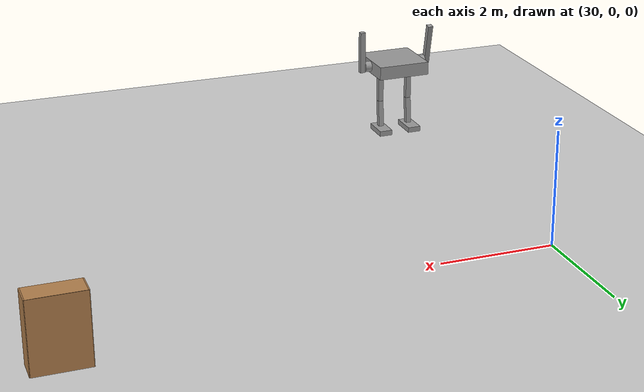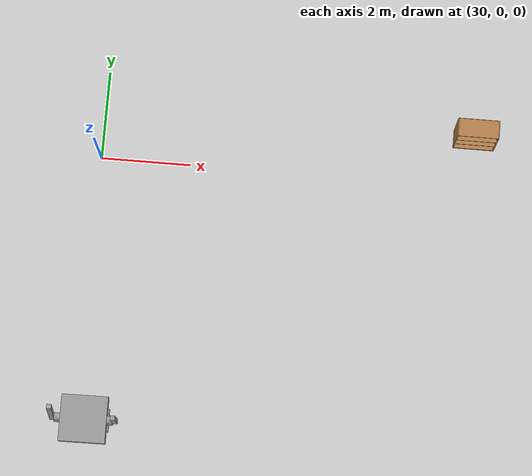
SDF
<sdf version="1.6">
 <world name="default">
  <model name="ground_plane">
   <static>1</static>
   <link name="link">
    <collision name="collision">
     <geometry><plane><normal>0 0 1</normal><size>100 100</size></plane></geometry>
     <surface><friction><ode><mu>100</mu><mu2>50</mu2></ode></friction></surface>
    </collision>
    <visual name="visual">
     <cast_shadows>0</cast_shadows>
     <geometry><plane><normal>0 0 1</normal><size>100 100</size></plane></geometry>
     <material>
      <script><uri>file://media/materials/scripts/gazebo.material</uri><name>Gazebo/Grey</name></script>
     </material>
    </visual>
   </link>
  </model>
  <model name="bookshelf_clone">
   <static>1</static>
   <link name="link">
    <inertial><mass>1</mass></inertial>
    <collision name="back">
     <pose>0 0.005 0.6 0 -0 0</pose>
     <geometry><box><size>0.9 0.01 1.2</size></box></geometry>
    </collision>
    <visual name="visual1">
     <pose>0 0.005 0.6 0 -0 0</pose>
     <geometry><box><size>0.9 0.01 1.2</size></box></geometry>
     <material>
      <script><uri>file://media/materials/scripts/gazebo.material</uri><name>Gazebo/Wood</name></script>
     </material>
    </visual>
    <collision name="left_side">
     <pose>0.45 -0.195 0.6 0 -0 0</pose>
     <geometry><box><size>0.02 0.4 1.2</size></box></geometry>
    </collision>
    <visual name="visual2">
     <pose>0.45 -0.195 0.6 0 -0 0</pose>
     <geometry><box><size>0.02 0.4 1.2</size></box></geometry>
     <material>
      <script><uri>file://media/materials/scripts/gazebo.material</uri><name>Gazebo/Wood</name></script>
     </material>
    </visual>
    <collision name="right_side">
     <pose>-0.45 -0.195 0.6 0 -0 0</pose>
     <geometry><box><size>0.02 0.4 1.2</size></box></geometry>
    </collision>
    <visual name="visual3">
     <pose>-0.45 -0.195 0.6 0 -0 0</pose>
     <geometry><box><size>0.02 0.4 1.2</size></box></geometry>
     <material>
      <script><uri>file://media/materials/scripts/gazebo.material</uri><name>Gazebo/Wood</name></script>
     </material>
    </visual>
    <collision name="bottom">
     <pose>0 -0.195 0.03 0 -0 0</pose>
     <geometry><box><size>0.88 0.4 0.06</size></box></geometry>
    </collision>
    <visual name="visual4">
     <pose>0 -0.195 0.03 0 -0 0</pose>
     <geometry><box><size>0.88 0.4 0.06</size></box></geometry>
     <material>
      <script><uri>file://media/materials/scripts/gazebo.material</uri><name>Gazebo/Wood</name></script>
     </material>
    </visual>
    <collision name="top">
     <pose>0 -0.195 1.19 0 -0 0</pose>
     <geometry><box><size>0.88 0.4 0.02</size></box></geometry>
    </collision>
    <visual name="visual5">
     <pose>0 -0.195 1.19 0 -0 0</pose>
     <geometry><box><size>0.88 0.4 0.02</size></box></geometry>
     <material>
      <script><uri>file://media/materials/scripts/gazebo.material</uri><name>Gazebo/Wood</name></script>
     </material>
    </visual>
    <collision name="low_shelf">
     <pose>0 -0.195 0.43 0 -0 0</pose>
     <geometry><box><size>0.88 0.4 0.02</size></box></geometry>
    </collision>
    <visual name="visual6">
     <pose>0 -0.195 0.43 0 -0 0</pose>
     <geometry><box><size>0.88 0.4 0.02</size></box></geometry>
     <material>
      <script><uri>file://media/materials/scripts/gazebo.material</uri><name>Gazebo/Wood</name></script>
     </material>
    </visual>
    <collision name="high_shelf">
     <pose>0 -0.195 0.8 0 -0 0</pose>
     <geometry><box><size>0.88 0.4 0.02</size></box></geometry>
    </collision>
    <visual name="visual7">
     <pose>0 -0.195 0.8 0 -0 0</pose>
     <geometry><box><size>0.88 0.4 0.02</size></box></geometry>
     <material>
      <script><uri>file://media/materials/scripts/gazebo.material</uri><name>Gazebo/Wood</name></script>
     </material>
    </visual>
   </link>
   <pose>38.3326 1.28491 0 0 -0 0</pose>
  </model>
  <model name="HumanoidRobot_0">
   <link name="link_0_clone">
    <inertial>
     <mass>1</mass>
     <inertia>
      <ixx>0.166667</ixx>
      <ixy>0</ixy>
      <ixz>0</ixz>
      <iyy>0.166667</iyy>
      <iyz>0</iyz>
      <izz>0.166667</izz>
     </inertia>
    </inertial>
    <pose>-0.226663 0.03903 0.1625 0 -0 0</pose>
    <visual name="visual">
     <geometry><box><size>0.25 0.5 0.1</size></box></geometry>
     <material>
      <lighting>1</lighting>
      <script><uri>file://media/materials/scripts/gazebo.material</uri><name>Gazebo/Grey</name></script>
      <shader type="pixel"><normal_map>__default__</normal_map></shader>
      <ambient>0.3 0.3 0.3 1</ambient>
      <diffuse>0.7 0.7 0.7 1</diffuse>
      <specular>0.01 0.01 0.01 1</specular>
      <emissive>0 0 0 1</emissive>
     </material>
    </visual>
    <collision name="collision">
     <geometry><box><size>0.25 0.5 0.1</size></box></geometry>
     <surface>
      <friction>
       <ode><mu>1</mu><mu2>1</mu2><fdir1>0 0 0</fdir1><slip1>0</slip1><slip2>0</slip2></ode>
       <torsional>
        <coefficient>1</coefficient>
        <patch_radius>0</patch_radius>
        <surface_radius>0</surface_radius>
        <use_patch_radius>1</use_patch_radius>
        <ode><slip>0</slip></ode>
       </torsional>
      </friction>
      <bounce><restitution_coefficient>0</restitution_coefficient><threshold>1e+06</threshold></bounce>
      <contact>
       <collide_without_contact>0</collide_without_contact>
       <collide_without_contact_bitmask>1</collide_without_contact_bitmask>
       <collide_bitmask>1</collide_bitmask>
       <ode>
        <soft_cfm>0</soft_cfm>
        <soft_erp>0.2</soft_erp>
        <kp>1e+13</kp>
        <kd>1</kd>
        <max_vel>0.01</max_vel>
        <min_depth>0</min_depth>
       </ode>
       <bullet>
        <split_impulse>1</split_impulse>
        <split_impulse_penetration_threshold>-0.01</split_impulse_penetration_threshold>
        <soft_cfm>0</soft_cfm>
        <soft_erp>0.2</soft_erp>
        <kp>1e+13</kp>
        <kd>1</kd>
       </bullet>
      </contact>
     </surface>
    </collision>
   </link>
   <link name="link_0_clone_0">
    <inertial>
     <mass>1</mass>
     <inertia>
      <ixx>0.166667</ixx>
      <ixy>0</ixy>
      <ixz>0</ixz>
      <iyy>0.166667</iyy>
      <iyz>0</iyz>
      <izz>0.166667</izz>
     </inertia>
    </inertial>
    <pose>0.373337 0.03903 0.1625 0 -0 0</pose>
    <visual name="visual">
     <geometry><box><size>0.25 0.5 0.1</size></box></geometry>
     <material>
      <lighting>1</lighting>
      <script><uri>file://media/materials/scripts/gazebo.material</uri><name>Gazebo/Grey</name></script>
      <shader type="pixel"><normal_map>__default__</normal_map></shader>
      <ambient>0.3 0.3 0.3 1</ambient>
      <diffuse>0.7 0.7 0.7 1</diffuse>
      <specular>0.01 0.01 0.01 1</specular>
      <emissive>0 0 0 1</emissive>
     </material>
    </visual>
    <collision name="collision">
     <geometry><box><size>0.25 0.5 0.1</size></box></geometry>
     <surface>
      <friction>
       <ode><mu>1</mu><mu2>1</mu2><fdir1>0 0 0</fdir1><slip1>0</slip1><slip2>0</slip2></ode>
       <torsional>
        <coefficient>1</coefficient>
        <patch_radius>0</patch_radius>
        <surface_radius>0</surface_radius>
        <use_patch_radius>1</use_patch_radius>
        <ode><slip>0</slip></ode>
       </torsional>
      </friction>
      <bounce><restitution_coefficient>0</restitution_coefficient><threshold>1e+06</threshold></bounce>
      <contact>
       <collide_without_contact>0</collide_without_contact>
       <collide_without_contact_bitmask>1</collide_without_contact_bitmask>
       <collide_bitmask>1</collide_bitmask>
       <ode>
        <soft_cfm>0</soft_cfm>
        <soft_erp>0.2</soft_erp>
        <kp>1e+13</kp>
        <kd>1</kd>
        <max_vel>0.01</max_vel>
        <min_depth>0</min_depth>
       </ode>
       <bullet>
        <split_impulse>1</split_impulse>
        <split_impulse_penetration_threshold>-0.01</split_impulse_penetration_threshold>
        <soft_cfm>0</soft_cfm>
        <soft_erp>0.2</soft_erp>
        <kp>1e+13</kp>
        <kd>1</kd>
       </bullet>
      </contact>
     </surface>
    </collision>
   </link>
   <link name="link_0_clone_1">
    <inertial>
     <mass>1</mass>
     <inertia>
      <ixx>0.166667</ixx>
      <ixy>0</ixy>
      <ixz>0</ixz>
      <iyy>0.166667</iyy>
      <iyz>0</iyz>
      <izz>0.166667</izz>
     </inertia>
    </inertial>
    <pose>0.355188 -0.06097 0.412308 0.1 -0 0</pose>
    <visual name="visual">
     <geometry><box><size>0.1 0.1 0.6</size></box></geometry>
     <material>
      <lighting>1</lighting>
      <script><uri>file://media/materials/scripts/gazebo.material</uri><name>Gazebo/Grey</name></script>
      <shader type="pixel"><normal_map>__default__</normal_map></shader>
      <ambient>0.3 0.3 0.3 1</ambient>
      <diffuse>0.7 0.7 0.7 1</diffuse>
      <specular>0.01 0.01 0.01 1</specular>
      <emissive>0 0 0 1</emissive>
     </material>
    </visual>
    <collision name="collision">
     <geometry><box><size>0.1 0.1 0.6</size></box></geometry>
     <surface>
      <friction>
       <ode><mu>1</mu><mu2>1</mu2><fdir1>0 0 0</fdir1><slip1>0</slip1><slip2>0</slip2></ode>
       <torsional>
        <coefficient>1</coefficient>
        <patch_radius>0</patch_radius>
        <surface_radius>0</surface_radius>
        <use_patch_radius>1</use_patch_radius>
        <ode><slip>0</slip></ode>
       </torsional>
      </friction>
      <bounce><restitution_coefficient>0</restitution_coefficient><threshold>1e+06</threshold></bounce>
      <contact>
       <collide_without_contact>0</collide_without_contact>
       <collide_without_contact_bitmask>1</collide_without_contact_bitmask>
       <collide_bitmask>1</collide_bitmask>
       <ode>
        <soft_cfm>0</soft_cfm>
        <soft_erp>0.2</soft_erp>
        <kp>1e+13</kp>
        <kd>1</kd>
        <max_vel>0.01</max_vel>
        <min_depth>0</min_depth>
       </ode>
       <bullet>
        <split_impulse>1</split_impulse>
        <split_impulse_penetration_threshold>-0.01</split_impulse_penetration_threshold>
        <soft_cfm>0</soft_cfm>
        <soft_erp>0.2</soft_erp>
        <kp>1e+13</kp>
        <kd>1</kd>
       </bullet>
      </contact>
     </surface>
    </collision>
   </link>
   <link name="link_0_clone_1_clone">
    <inertial>
     <mass>1</mass>
     <inertia>
      <ixx>0.166667</ixx>
      <ixy>0</ixy>
      <ixz>0</ixz>
      <iyy>0.166667</iyy>
      <iyz>0</iyz>
      <izz>0.166667</izz>
     </inertia>
    </inertial>
    <pose>0.355186 -0.090803 1.01909 0 -0 0</pose>
    <visual name="visual">
     <geometry><box><size>0.1 0.1 0.6</size></box></geometry>
     <material>
      <lighting>1</lighting>
      <script><uri>file://media/materials/scripts/gazebo.material</uri><name>Gazebo/Grey</name></script>
      <shader type="pixel"><normal_map>__default__</normal_map></shader>
      <ambient>0.3 0.3 0.3 1</ambient>
      <diffuse>0.7 0.7 0.7 1</diffuse>
      <specular>0.01 0.01 0.01 1</specular>
      <emissive>0 0 0 1</emissive>
     </material>
    </visual>
    <collision name="collision">
     <geometry><box><size>0.1 0.1 0.6</size></box></geometry>
     <surface>
      <friction>
       <ode><mu>1</mu><mu2>1</mu2><fdir1>0 0 0</fdir1><slip1>0</slip1><slip2>0</slip2></ode>
       <torsional>
        <coefficient>1</coefficient>
        <patch_radius>0</patch_radius>
        <surface_radius>0</surface_radius>
        <use_patch_radius>1</use_patch_radius>
        <ode><slip>0</slip></ode>
       </torsional>
      </friction>
      <bounce><restitution_coefficient>0</restitution_coefficient><threshold>1e+06</threshold></bounce>
      <contact>
       <collide_without_contact>0</collide_without_contact>
       <collide_without_contact_bitmask>1</collide_without_contact_bitmask>
       <collide_bitmask>1</collide_bitmask>
       <ode>
        <soft_cfm>0</soft_cfm>
        <soft_erp>0.2</soft_erp>
        <kp>1e+13</kp>
        <kd>1</kd>
        <max_vel>0.01</max_vel>
        <min_depth>0</min_depth>
       </ode>
       <bullet>
        <split_impulse>1</split_impulse>
        <split_impulse_penetration_threshold>-0.01</split_impulse_penetration_threshold>
        <soft_cfm>0</soft_cfm>
        <soft_erp>0.2</soft_erp>
        <kp>1e+13</kp>
        <kd>1</kd>
       </bullet>
      </contact>
     </surface>
    </collision>
   </link>
   <link name="link_0_clone_1_clone_0">
    <inertial>
     <mass>1</mass>
     <inertia>
      <ixx>0.166667</ixx>
      <ixy>0</ixy>
      <ixz>0</ixz>
      <iyy>0.166667</iyy>
      <iyz>0</iyz>
      <izz>0.166667</izz>
     </inertia>
    </inertial>
    <pose>-0.226658 -0.090799 1.01928 0 -0 0</pose>
    <visual name="visual">
     <geometry><box><size>0.1 0.1 0.6</size></box></geometry>
     <material>
      <lighting>1</lighting>
      <script><uri>file://media/materials/scripts/gazebo.material</uri><name>Gazebo/Grey</name></script>
      <shader type="pixel"><normal_map>__default__</normal_map></shader>
      <ambient>0.3 0.3 0.3 1</ambient>
      <diffuse>0.7 0.7 0.7 1</diffuse>
      <specular>0.01 0.01 0.01 1</specular>
      <emissive>0 0 0 1</emissive>
     </material>
    </visual>
    <collision name="collision">
     <geometry><box><size>0.1 0.1 0.6</size></box></geometry>
     <surface>
      <friction>
       <ode><mu>1</mu><mu2>1</mu2><fdir1>0 0 0</fdir1><slip1>0</slip1><slip2>0</slip2></ode>
       <torsional>
        <coefficient>1</coefficient>
        <patch_radius>0</patch_radius>
        <surface_radius>0</surface_radius>
        <use_patch_radius>1</use_patch_radius>
        <ode><slip>0</slip></ode>
       </torsional>
      </friction>
      <bounce><restitution_coefficient>0</restitution_coefficient><threshold>1e+06</threshold></bounce>
      <contact>
       <collide_without_contact>0</collide_without_contact>
       <collide_without_contact_bitmask>1</collide_without_contact_bitmask>
       <collide_bitmask>1</collide_bitmask>
       <ode>
        <soft_cfm>0</soft_cfm>
        <soft_erp>0.2</soft_erp>
        <kp>1e+13</kp>
        <kd>1</kd>
        <max_vel>0.01</max_vel>
        <min_depth>0</min_depth>
       </ode>
       <bullet>
        <split_impulse>1</split_impulse>
        <split_impulse_penetration_threshold>-0.01</split_impulse_penetration_threshold>
        <soft_cfm>0</soft_cfm>
        <soft_erp>0.2</soft_erp>
        <kp>1e+13</kp>
        <kd>1</kd>
       </bullet>
      </contact>
     </surface>
    </collision>
   </link>
   <link name="link_0_clone_1_clone_clone_clone_0">
    <inertial>
     <mass>1</mass>
     <inertia>
      <ixx>0.166667</ixx>
      <ixy>0</ixy>
      <ixz>0</ixz>
      <iyy>0.166667</iyy>
      <iyz>0</iyz>
      <izz>0.166667</izz>
     </inertia>
    </inertial>
    <pose>0.748362 -0.07674 1.75145 0 -0 0</pose>
    <visual name="visual">
     <geometry><box><size>0.1 0.1 0.8</size></box></geometry>
     <material>
      <lighting>1</lighting>
      <script><uri>file://media/materials/scripts/gazebo.material</uri><name>Gazebo/Grey</name></script>
      <shader type="pixel"><normal_map>__default__</normal_map></shader>
      <ambient>0.3 0.3 0.3 1</ambient>
      <diffuse>0.7 0.7 0.7 1</diffuse>
      <specular>0.01 0.01 0.01 1</specular>
      <emissive>0 0 0 1</emissive>
     </material>
    </visual>
    <collision name="collision">
     <geometry><box><size>0.1 0.1 0.8</size></box></geometry>
     <surface>
      <friction>
       <ode><mu>1</mu><mu2>1</mu2><fdir1>0 0 0</fdir1><slip1>0</slip1><slip2>0</slip2></ode>
       <torsional>
        <coefficient>1</coefficient>
        <patch_radius>0</patch_radius>
        <surface_radius>0</surface_radius>
        <use_patch_radius>1</use_patch_radius>
        <ode><slip>0</slip></ode>
       </torsional>
      </friction>
      <bounce><restitution_coefficient>0</restitution_coefficient><threshold>1e+06</threshold></bounce>
      <contact>
       <collide_without_contact>0</collide_without_contact>
       <collide_without_contact_bitmask>1</collide_without_contact_bitmask>
       <collide_bitmask>1</collide_bitmask>
       <ode>
        <soft_cfm>0</soft_cfm>
        <soft_erp>0.2</soft_erp>
        <kp>1e+13</kp>
        <kd>1</kd>
        <max_vel>0.01</max_vel>
        <min_depth>0</min_depth>
       </ode>
       <bullet>
        <split_impulse>1</split_impulse>
        <split_impulse_penetration_threshold>-0.01</split_impulse_penetration_threshold>
        <soft_cfm>0</soft_cfm>
        <soft_erp>0.2</soft_erp>
        <kp>1e+13</kp>
        <kd>1</kd>
       </bullet>
      </contact>
     </surface>
    </collision>
   </link>
   <link name="link_0_clone_1_clone_clone_clone_0_clone">
    <inertial>
     <mass>1</mass>
     <inertia>
      <ixx>0.166667</ixx>
      <ixy>0</ixy>
      <ixz>0</ixz>
      <iyy>0.166667</iyy>
      <iyz>0</iyz>
      <izz>0.166667</izz>
     </inertia>
    </inertial>
    <pose>-0.601678 -0.00674 1.79145 -0.2 0 0</pose>
    <visual name="visual">
     <geometry><box><size>0.1 0.1 0.8</size></box></geometry>
     <material>
      <lighting>1</lighting>
      <script><uri>file://media/materials/scripts/gazebo.material</uri><name>Gazebo/Grey</name></script>
      <shader type="pixel"><normal_map>__default__</normal_map></shader>
      <ambient>0.3 0.3 0.3 1</ambient>
      <diffuse>0.7 0.7 0.7 1</diffuse>
      <specular>0.01 0.01 0.01 1</specular>
      <emissive>0 0 0 1</emissive>
     </material>
    </visual>
    <collision name="collision">
     <geometry><box><size>0.1 0.1 0.8</size></box></geometry>
     <surface>
      <friction>
       <ode><mu>1</mu><mu2>1</mu2><fdir1>0 0 0</fdir1><slip1>0</slip1><slip2>0</slip2></ode>
       <torsional>
        <coefficient>1</coefficient>
        <patch_radius>0</patch_radius>
        <surface_radius>0</surface_radius>
        <use_patch_radius>1</use_patch_radius>
        <ode><slip>0</slip></ode>
       </torsional>
      </friction>
      <bounce><restitution_coefficient>0</restitution_coefficient><threshold>1e+06</threshold></bounce>
      <contact>
       <collide_without_contact>0</collide_without_contact>
       <collide_without_contact_bitmask>1</collide_without_contact_bitmask>
       <collide_bitmask>1</collide_bitmask>
       <ode>
        <soft_cfm>0</soft_cfm>
        <soft_erp>0.2</soft_erp>
        <kp>1e+13</kp>
        <kd>1</kd>
        <max_vel>0.01</max_vel>
        <min_depth>0</min_depth>
       </ode>
       <bullet>
        <split_impulse>1</split_impulse>
        <split_impulse_penetration_threshold>-0.01</split_impulse_penetration_threshold>
        <soft_cfm>0</soft_cfm>
        <soft_erp>0.2</soft_erp>
        <kp>1e+13</kp>
        <kd>1</kd>
       </bullet>
      </contact>
     </surface>
    </collision>
   </link>
   <link name="link_0_clone_2">
    <inertial>
     <mass>1</mass>
     <inertia>
      <ixx>0.166667</ixx>
      <ixy>0</ixy>
      <ixz>0</ixz>
      <iyy>0.166667</iyy>
      <iyz>0</iyz>
      <izz>0.166667</izz>
     </inertia>
    </inertial>
    <pose>-0.226663 -0.06097 0.4125 0.1 -0 0</pose>
    <visual name="visual">
     <geometry><box><size>0.1 0.1 0.6</size></box></geometry>
     <material>
      <lighting>1</lighting>
      <script><uri>file://media/materials/scripts/gazebo.material</uri><name>Gazebo/Grey</name></script>
      <shader type="pixel"><normal_map>__default__</normal_map></shader>
      <ambient>0.3 0.3 0.3 1</ambient>
      <diffuse>0.7 0.7 0.7 1</diffuse>
      <specular>0.01 0.01 0.01 1</specular>
      <emissive>0 0 0 1</emissive>
     </material>
    </visual>
    <collision name="collision">
     <geometry><box><size>0.1 0.1 0.6</size></box></geometry>
     <surface>
      <friction>
       <ode><mu>1</mu><mu2>1</mu2><fdir1>0 0 0</fdir1><slip1>0</slip1><slip2>0</slip2></ode>
       <torsional>
        <coefficient>1</coefficient>
        <patch_radius>0</patch_radius>
        <surface_radius>0</surface_radius>
        <use_patch_radius>1</use_patch_radius>
        <ode><slip>0</slip></ode>
       </torsional>
      </friction>
      <bounce><restitution_coefficient>0</restitution_coefficient><threshold>1e+06</threshold></bounce>
      <contact>
       <collide_without_contact>0</collide_without_contact>
       <collide_without_contact_bitmask>1</collide_without_contact_bitmask>
       <collide_bitmask>1</collide_bitmask>
       <ode>
        <soft_cfm>0</soft_cfm>
        <soft_erp>0.2</soft_erp>
        <kp>1e+13</kp>
        <kd>1</kd>
        <max_vel>0.01</max_vel>
        <min_depth>0</min_depth>
       </ode>
       <bullet>
        <split_impulse>1</split_impulse>
        <split_impulse_penetration_threshold>-0.01</split_impulse_penetration_threshold>
        <soft_cfm>0</soft_cfm>
        <soft_erp>0.2</soft_erp>
        <kp>1e+13</kp>
        <kd>1</kd>
       </bullet>
      </contact>
     </surface>
    </collision>
   </link>
   <link name="link_1">
    <inertial>
     <mass>1</mass>
     <inertia>
      <ixx>0.166667</ixx>
      <ixy>0</ixy>
      <ixz>0</ixz>
      <iyy>0.166667</iyy>
      <iyz>0</iyz>
      <izz>0.166667</izz>
     </inertia>
    </inertial>
    <pose>0.073342 -0.076669 1.44489 0.009447 1e-06 0.000191</pose>
    <visual name="visual">
     <geometry><box><size>1 1 0.25</size></box></geometry>
     <material>
      <lighting>1</lighting>
      <script><uri>file://media/materials/scripts/gazebo.material</uri><name>Gazebo/Grey</name></script>
      <shader type="pixel"><normal_map>__default__</normal_map></shader>
      <ambient>0.3 0.3 0.3 1</ambient>
      <diffuse>0.7 0.7 0.7 1</diffuse>
      <specular>0.01 0.01 0.01 1</specular>
      <emissive>0 0 0 1</emissive>
     </material>
    </visual>
    <collision name="collision">
     <geometry><box><size>1 1 0.25</size></box></geometry>
     <surface>
      <friction>
       <ode><mu>1</mu><mu2>1</mu2><fdir1>0 0 0</fdir1><slip1>0</slip1><slip2>0</slip2></ode>
       <torsional>
        <coefficient>1</coefficient>
        <patch_radius>0</patch_radius>
        <surface_radius>0</surface_radius>
        <use_patch_radius>1</use_patch_radius>
        <ode><slip>0</slip></ode>
       </torsional>
      </friction>
      <bounce><restitution_coefficient>0</restitution_coefficient><threshold>1e+06</threshold></bounce>
      <contact>
       <collide_without_contact>0</collide_without_contact>
       <collide_without_contact_bitmask>1</collide_without_contact_bitmask>
       <collide_bitmask>1</collide_bitmask>
       <ode>
        <soft_cfm>0</soft_cfm>
        <soft_erp>0.2</soft_erp>
        <kp>1e+13</kp>
        <kd>1</kd>
        <max_vel>0.01</max_vel>
        <min_depth>0</min_depth>
       </ode>
       <bullet>
        <split_impulse>1</split_impulse>
        <split_impulse_penetration_threshold>-0.01</split_impulse_penetration_threshold>
        <soft_cfm>0</soft_cfm>
        <soft_erp>0.2</soft_erp>
        <kp>1e+13</kp>
        <kd>1</kd>
       </bullet>
      </contact>
     </surface>
    </collision>
   </link>
   <link name="link_2_clone_clone">
    <inertial>
     <mass>1</mass>
     <inertia><ixx>0.145833</ixx><ixy>0</ixy><ixz>0</ixz><iyy>0.145833</iyy><iyz>0</iyz><izz>0.125</izz></inertia>
    </inertial>
    <pose>0.073342 -0.07674 1.45239 1.5708 -0.009446 1.57099</pose>
    <visual name="visual">
     <geometry><cylinder><radius>0.1</radius><length>1.25</length></cylinder></geometry>
     <material>
      <lighting>1</lighting>
      <script><uri>file://media/materials/scripts/gazebo.material</uri><name>Gazebo/Grey</name></script>
      <shader type="pixel"><normal_map>__default__</normal_map></shader>
      <ambient>0.3 0.3 0.3 1</ambient>
      <diffuse>0.7 0.7 0.7 1</diffuse>
      <specular>0.01 0.01 0.01 1</specular>
      <emissive>0 0 0 1</emissive>
     </material>
    </visual>
    <collision name="collision">
     <geometry><cylinder><radius>0.1</radius><length>1.25</length></cylinder></geometry>
     <surface>
      <friction>
       <ode><mu>1</mu><mu2>1</mu2><fdir1>0 0 0</fdir1><slip1>0</slip1><slip2>0</slip2></ode>
       <torsional>
        <coefficient>1</coefficient>
        <patch_radius>0</patch_radius>
        <surface_radius>0</surface_radius>
        <use_patch_radius>1</use_patch_radius>
        <ode><slip>0</slip></ode>
       </torsional>
      </friction>
      <bounce><restitution_coefficient>0</restitution_coefficient><threshold>1e+06</threshold></bounce>
      <contact>
       <collide_without_contact>0</collide_without_contact>
       <collide_without_contact_bitmask>1</collide_without_contact_bitmask>
       <collide_bitmask>1</collide_bitmask>
       <ode>
        <soft_cfm>0</soft_cfm>
        <soft_erp>0.2</soft_erp>
        <kp>1e+13</kp>
        <kd>1</kd>
        <max_vel>0.01</max_vel>
        <min_depth>0</min_depth>
       </ode>
       <bullet>
        <split_impulse>1</split_impulse>
        <split_impulse_penetration_threshold>-0.01</split_impulse_penetration_threshold>
        <soft_cfm>0</soft_cfm>
        <soft_erp>0.2</soft_erp>
        <kp>1e+13</kp>
        <kd>1</kd>
       </bullet>
      </contact>
     </surface>
    </collision>
   </link>
   <joint name="link_0_clone_0_JOINT_0" type="fixed">
    <parent>link_0_clone_0</parent>
    <child>link_0_clone_1</child>
    <physics>
     <ode><limit><cfm>0</cfm><erp>0.2</erp></limit><suspension><cfm>0</cfm><erp>0.2</erp></suspension></ode>
    </physics>
   </joint>
   <joint name="link_0_clone_1_JOINT_1" type="fixed">
    <parent>link_0_clone_1</parent>
    <child>link_0_clone_1_clone</child>
    <physics>
     <ode><limit><cfm>0</cfm><erp>0.2</erp></limit><suspension><cfm>0</cfm><erp>0.2</erp></suspension></ode>
    </physics>
   </joint>
   <joint name="link_0_clone_1_clone_0_JOINT_3" type="fixed">
    <parent>link_0_clone_1_clone_0</parent>
    <child>link_1</child>
    <physics>
     <ode><limit><cfm>0</cfm><erp>0.2</erp></limit><suspension><cfm>0</cfm><erp>0.2</erp></suspension></ode>
    </physics>
   </joint>
   <joint name="link_0_clone_1_clone_JOINT_9" type="fixed">
    <parent>link_0_clone_1_clone</parent>
    <child>link_1</child>
    <physics>
     <ode><limit><cfm>0</cfm><erp>0.2</erp></limit><suspension><cfm>0</cfm><erp>0.2</erp></suspension></ode>
    </physics>
   </joint>
   <joint name="link_0_clone_2_JOINT_2" type="fixed">
    <parent>link_0_clone_2</parent>
    <child>link_0_clone_1_clone_0</child>
    <physics>
     <ode><limit><cfm>0</cfm><erp>0.2</erp></limit><suspension><cfm>0</cfm><erp>0.2</erp></suspension></ode>
    </physics>
   </joint>
   <joint name="link_0_clone_JOINT_2" type="fixed">
    <parent>link_0_clone</parent>
    <child>link_0_clone_2</child>
    <physics>
     <ode><limit><cfm>0</cfm><erp>0.2</erp></limit><suspension><cfm>0</cfm><erp>0.2</erp></suspension></ode>
    </physics>
   </joint>
   <joint name="link_1_JOINT_4" type="fixed">
    <parent>link_1</parent>
    <child>link_2_clone_clone</child>
    <physics>
     <ode><limit><cfm>0</cfm><erp>0.2</erp></limit><suspension><cfm>0</cfm><erp>0.2</erp></suspension></ode>
    </physics>
   </joint>
   <joint name="link_2_clone_clone_JOINT_5" type="revolute">
    <parent>link_2_clone_clone</parent>
    <child>link_0_clone_1_clone_clone_clone_0</child>
    <pose>0 0 -0.3 0 -0 0</pose>
    <axis>
     <xyz>1 0.03 0</xyz>
     <use_parent_model_frame>0</use_parent_model_frame>
     <limit>
      <lower>-1.79769e+308</lower>
      <upper>1.79769e+308</upper>
      <effort>-1</effort>
      <velocity>-1</velocity>
     </limit>
     <dynamics>
      <spring_reference>0</spring_reference>
      <spring_stiffness>0</spring_stiffness>
      <damping>0.1</damping>
      <friction>0.2</friction>
     </dynamics>
    </axis>
    <physics>
     <ode><limit><cfm>0</cfm><erp>0.2</erp></limit><suspension><cfm>0</cfm><erp>0.2</erp></suspension></ode>
    </physics>
   </joint>
   <joint name="link_2_clone_clone_JOINT_6" type="revolute">
    <parent>link_2_clone_clone</parent>
    <child>link_0_clone_1_clone_clone_clone_0_clone</child>
    <pose>0 0 -0.3 0 -0 0</pose>
    <axis>
     <xyz>1 0 0</xyz>
     <use_parent_model_frame>0</use_parent_model_frame>
     <limit>
      <lower>-1.79769e+308</lower>
      <upper>1.79769e+308</upper>
      <effort>-1</effort>
      <velocity>-1</velocity>
     </limit>
     <dynamics>
      <spring_reference>0</spring_reference>
      <spring_stiffness>0</spring_stiffness>
      <damping>0.1</damping>
      <friction>0</friction>
     </dynamics>
    </axis>
    <physics>
     <ode><limit><cfm>0</cfm><erp>0.2</erp></limit><suspension><cfm>0</cfm><erp>0.2</erp></suspension></ode>
    </physics>
   </joint>
   <static>0</static>
   <pose>30.2403 -5.93329 -0.10967 -0.009377 -0.000319 0.012095</pose>
  </model>
 </world>
</sdf>
